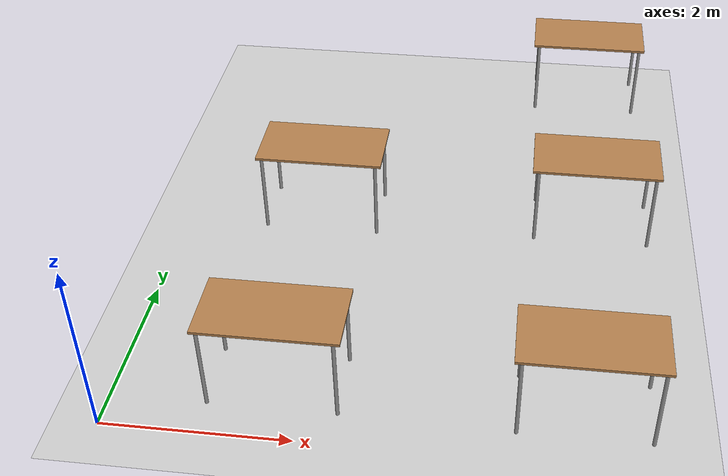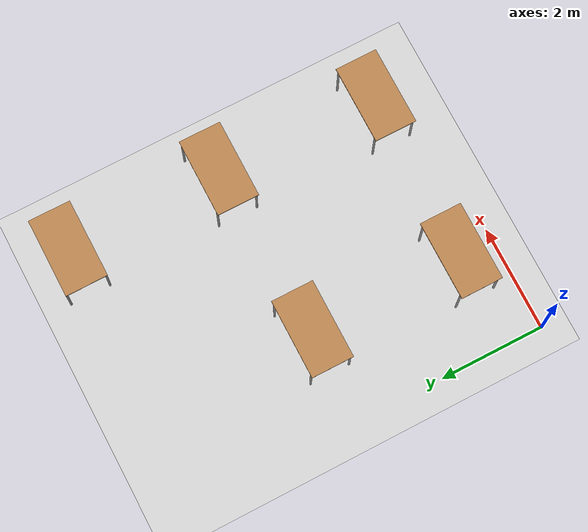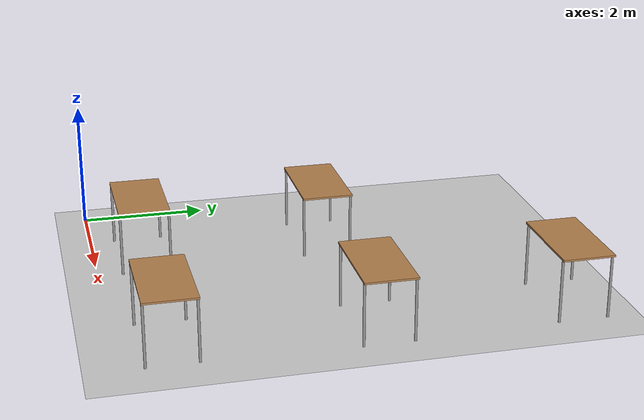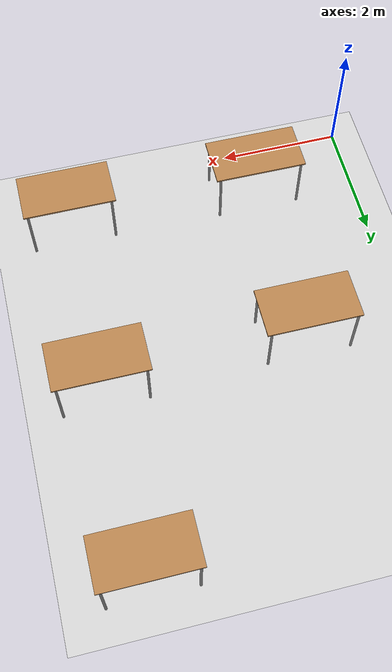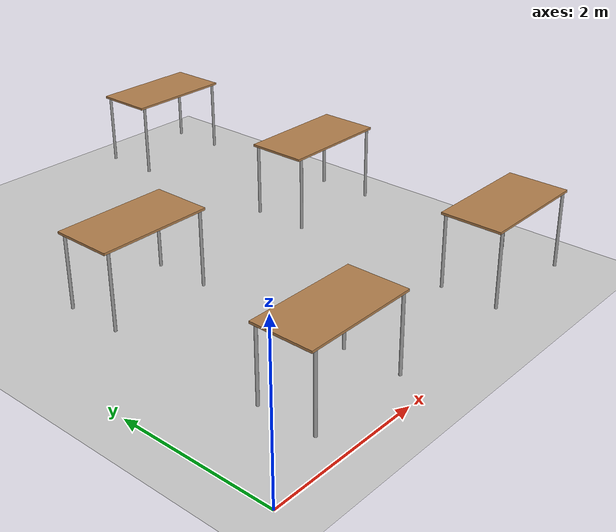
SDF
<sdf version="1.6">
 <world name="default">
  <light name="sun" type="directional">
   <pose>0 0 10 0 -0 0</pose>
   <diffuse>0.8 0.8 0.8 1</diffuse>
   <specular>0.2 0.2 0.2 1</specular>
   <attenuation>
    <range>1000</range>
    <constant>0.9</constant>
    <linear>0.01</linear>
    <quadratic>0.001</quadratic>
   </attenuation>
   <direction>-0.5 0.1 -0.9</direction>
  </light>
  <model name="ground_plane">
   <static>1</static>
   <link name="link">
    <collision name="collision">
     <geometry><plane><normal>0 0 1</normal><size>100 100</size></plane></geometry>
     <surface>
      <contact><collide_bitmask>65535</collide_bitmask></contact>
      <friction><ode><mu>100</mu><mu2>50</mu2></ode></friction>
     </surface>
    </collision>
    <visual name="visual">
     <cast_shadows>0</cast_shadows>
     <geometry><plane><normal>0 0 1</normal><size>100 100</size></plane></geometry>
     <material>
      <script><uri>file://media/materials/scripts/gazebo.material</uri><name>Gazebo/Grey</name></script>
     </material>
    </visual>
   </link>
  </model>
  <gravity>0 0 -9.8</gravity>
  <magnetic_field>6e-06 2.3e-05 -4.2e-05</magnetic_field>
  <atmosphere type="adiabatic"/>
  <physics name="default_physics" default="0" type="ode">
   <max_step_size>0.001</max_step_size>
   <real_time_factor>1</real_time_factor>
   <real_time_update_rate>1000</real_time_update_rate>
  </physics>
  <scene><ambient>0.4 0.4 0.4 1</ambient><background>0.7 0.7 0.7 1</background><shadows>1</shadows></scene>
  <spherical_coordinates>
   <surface_model>EARTH_WGS84</surface_model>
   <latitude_deg>0</latitude_deg>
   <longitude_deg>0</longitude_deg>
   <elevation>0</elevation>
   <heading_deg>0</heading_deg>
  </spherical_coordinates>
  <model name="table">
   <static>1</static>
   <link name="link">
    <collision name="surface">
     <pose>0 0 1 0 -0 0</pose>
     <geometry><box><size>1.5 0.8 0.03</size></box></geometry>
     <surface><friction><ode><mu>0.6</mu><mu2>0.6</mu2></ode></friction></surface>
    </collision>
    <visual name="visual1">
     <pose>0 0 1 0 -0 0</pose>
     <geometry><box><size>1.5 0.8 0.03</size></box></geometry>
     <material>
      <script><uri>file://media/materials/scripts/gazebo.material</uri><name>Gazebo/Wood</name></script>
     </material>
    </visual>
    <collision name="front_left_leg">
     <pose>0.68 0.38 0.5 0 -0 0</pose>
     <geometry><cylinder><radius>0.02</radius><length>1</length></cylinder></geometry>
    </collision>
    <visual name="front_left_leg">
     <pose>0.68 0.38 0.5 0 -0 0</pose>
     <geometry><cylinder><radius>0.02</radius><length>1</length></cylinder></geometry>
     <material>
      <script><uri>file://media/materials/scripts/gazebo.material</uri><name>Gazebo/Grey</name></script>
     </material>
    </visual>
    <collision name="front_right_leg">
     <pose>0.68 -0.38 0.5 0 -0 0</pose>
     <geometry><cylinder><radius>0.02</radius><length>1</length></cylinder></geometry>
    </collision>
    <visual name="front_right_leg">
     <pose>0.68 -0.38 0.5 0 -0 0</pose>
     <geometry><cylinder><radius>0.02</radius><length>1</length></cylinder></geometry>
     <material>
      <script><uri>file://media/materials/scripts/gazebo.material</uri><name>Gazebo/Grey</name></script>
     </material>
    </visual>
    <collision name="back_right_leg">
     <pose>-0.68 -0.38 0.5 0 -0 0</pose>
     <geometry><cylinder><radius>0.02</radius><length>1</length></cylinder></geometry>
    </collision>
    <visual name="back_right_leg">
     <pose>-0.68 -0.38 0.5 0 -0 0</pose>
     <geometry><cylinder><radius>0.02</radius><length>1</length></cylinder></geometry>
     <material>
      <script><uri>file://media/materials/scripts/gazebo.material</uri><name>Gazebo/Grey</name></script>
     </material>
    </visual>
    <collision name="back_left_leg">
     <pose>-0.68 0.38 0.5 0 -0 0</pose>
     <geometry><cylinder><radius>0.02</radius><length>1</length></cylinder></geometry>
    </collision>
    <visual name="back_left_leg">
     <pose>-0.68 0.38 0.5 0 -0 0</pose>
     <geometry><cylinder><radius>0.02</radius><length>1</length></cylinder></geometry>
     <material>
      <script><uri>file://media/materials/scripts/gazebo.material</uri><name>Gazebo/Grey</name></script>
     </material>
    </visual>
   </link>
   <pose>4.88351 6.77951 0 0 -0 0</pose>
  </model>
  <model name="table_0">
   <static>1</static>
   <link name="link">
    <collision name="surface">
     <pose>0 0 1 0 -0 0</pose>
     <geometry><box><size>1.5 0.8 0.03</size></box></geometry>
     <surface><friction><ode><mu>0.6</mu><mu2>0.6</mu2></ode></friction></surface>
    </collision>
    <visual name="visual1">
     <pose>0 0 1 0 -0 0</pose>
     <geometry><box><size>1.5 0.8 0.03</size></box></geometry>
     <material>
      <script><uri>file://media/materials/scripts/gazebo.material</uri><name>Gazebo/Wood</name></script>
     </material>
    </visual>
    <collision name="front_left_leg">
     <pose>0.68 0.38 0.5 0 -0 0</pose>
     <geometry><cylinder><radius>0.02</radius><length>1</length></cylinder></geometry>
    </collision>
    <visual name="front_left_leg">
     <pose>0.68 0.38 0.5 0 -0 0</pose>
     <geometry><cylinder><radius>0.02</radius><length>1</length></cylinder></geometry>
     <material>
      <script><uri>file://media/materials/scripts/gazebo.material</uri><name>Gazebo/Grey</name></script>
     </material>
    </visual>
    <collision name="front_right_leg">
     <pose>0.68 -0.38 0.5 0 -0 0</pose>
     <geometry><cylinder><radius>0.02</radius><length>1</length></cylinder></geometry>
    </collision>
    <visual name="front_right_leg">
     <pose>0.68 -0.38 0.5 0 -0 0</pose>
     <geometry><cylinder><radius>0.02</radius><length>1</length></cylinder></geometry>
     <material>
      <script><uri>file://media/materials/scripts/gazebo.material</uri><name>Gazebo/Grey</name></script>
     </material>
    </visual>
    <collision name="back_right_leg">
     <pose>-0.68 -0.38 0.5 0 -0 0</pose>
     <geometry><cylinder><radius>0.02</radius><length>1</length></cylinder></geometry>
    </collision>
    <visual name="back_right_leg">
     <pose>-0.68 -0.38 0.5 0 -0 0</pose>
     <geometry><cylinder><radius>0.02</radius><length>1</length></cylinder></geometry>
     <material>
      <script><uri>file://media/materials/scripts/gazebo.material</uri><name>Gazebo/Grey</name></script>
     </material>
    </visual>
    <collision name="back_left_leg">
     <pose>-0.68 0.38 0.5 0 -0 0</pose>
     <geometry><cylinder><radius>0.02</radius><length>1</length></cylinder></geometry>
    </collision>
    <visual name="back_left_leg">
     <pose>-0.68 0.38 0.5 0 -0 0</pose>
     <geometry><cylinder><radius>0.02</radius><length>1</length></cylinder></geometry>
     <material>
      <script><uri>file://media/materials/scripts/gazebo.material</uri><name>Gazebo/Grey</name></script>
     </material>
    </visual>
   </link>
   <pose>4.95349 3.81373 0 0 -0 0</pose>
  </model>
  <model name="table_1">
   <static>1</static>
   <link name="link">
    <collision name="surface">
     <pose>0 0 1 0 -0 0</pose>
     <geometry><box><size>1.5 0.8 0.03</size></box></geometry>
     <surface><friction><ode><mu>0.6</mu><mu2>0.6</mu2></ode></friction></surface>
    </collision>
    <visual name="visual1">
     <pose>0 0 1 0 -0 0</pose>
     <geometry><box><size>1.5 0.8 0.03</size></box></geometry>
     <material>
      <script><uri>file://media/materials/scripts/gazebo.material</uri><name>Gazebo/Wood</name></script>
     </material>
    </visual>
    <collision name="front_left_leg">
     <pose>0.68 0.38 0.5 0 -0 0</pose>
     <geometry><cylinder><radius>0.02</radius><length>1</length></cylinder></geometry>
    </collision>
    <visual name="front_left_leg">
     <pose>0.68 0.38 0.5 0 -0 0</pose>
     <geometry><cylinder><radius>0.02</radius><length>1</length></cylinder></geometry>
     <material>
      <script><uri>file://media/materials/scripts/gazebo.material</uri><name>Gazebo/Grey</name></script>
     </material>
    </visual>
    <collision name="front_right_leg">
     <pose>0.68 -0.38 0.5 0 -0 0</pose>
     <geometry><cylinder><radius>0.02</radius><length>1</length></cylinder></geometry>
    </collision>
    <visual name="front_right_leg">
     <pose>0.68 -0.38 0.5 0 -0 0</pose>
     <geometry><cylinder><radius>0.02</radius><length>1</length></cylinder></geometry>
     <material>
      <script><uri>file://media/materials/scripts/gazebo.material</uri><name>Gazebo/Grey</name></script>
     </material>
    </visual>
    <collision name="back_right_leg">
     <pose>-0.68 -0.38 0.5 0 -0 0</pose>
     <geometry><cylinder><radius>0.02</radius><length>1</length></cylinder></geometry>
    </collision>
    <visual name="back_right_leg">
     <pose>-0.68 -0.38 0.5 0 -0 0</pose>
     <geometry><cylinder><radius>0.02</radius><length>1</length></cylinder></geometry>
     <material>
      <script><uri>file://media/materials/scripts/gazebo.material</uri><name>Gazebo/Grey</name></script>
     </material>
    </visual>
    <collision name="back_left_leg">
     <pose>-0.68 0.38 0.5 0 -0 0</pose>
     <geometry><cylinder><radius>0.02</radius><length>1</length></cylinder></geometry>
    </collision>
    <visual name="back_left_leg">
     <pose>-0.68 0.38 0.5 0 -0 0</pose>
     <geometry><cylinder><radius>0.02</radius><length>1</length></cylinder></geometry>
     <material>
      <script><uri>file://media/materials/scripts/gazebo.material</uri><name>Gazebo/Grey</name></script>
     </material>
    </visual>
   </link>
   <pose>4.87106 0.745924 0 0 -0 0</pose>
  </model>
  <model name="table_2">
   <static>1</static>
   <link name="link">
    <collision name="surface">
     <pose>0 0 1 0 -0 0</pose>
     <geometry><box><size>1.5 0.8 0.03</size></box></geometry>
     <surface><friction><ode><mu>0.6</mu><mu2>0.6</mu2></ode></friction></surface>
    </collision>
    <visual name="visual1">
     <pose>0 0 1 0 -0 0</pose>
     <geometry><box><size>1.5 0.8 0.03</size></box></geometry>
     <material>
      <script><uri>file://media/materials/scripts/gazebo.material</uri><name>Gazebo/Wood</name></script>
     </material>
    </visual>
    <collision name="front_left_leg">
     <pose>0.68 0.38 0.5 0 -0 0</pose>
     <geometry><cylinder><radius>0.02</radius><length>1</length></cylinder></geometry>
    </collision>
    <visual name="front_left_leg">
     <pose>0.68 0.38 0.5 0 -0 0</pose>
     <geometry><cylinder><radius>0.02</radius><length>1</length></cylinder></geometry>
     <material>
      <script><uri>file://media/materials/scripts/gazebo.material</uri><name>Gazebo/Grey</name></script>
     </material>
    </visual>
    <collision name="front_right_leg">
     <pose>0.68 -0.38 0.5 0 -0 0</pose>
     <geometry><cylinder><radius>0.02</radius><length>1</length></cylinder></geometry>
    </collision>
    <visual name="front_right_leg">
     <pose>0.68 -0.38 0.5 0 -0 0</pose>
     <geometry><cylinder><radius>0.02</radius><length>1</length></cylinder></geometry>
     <material>
      <script><uri>file://media/materials/scripts/gazebo.material</uri><name>Gazebo/Grey</name></script>
     </material>
    </visual>
    <collision name="back_right_leg">
     <pose>-0.68 -0.38 0.5 0 -0 0</pose>
     <geometry><cylinder><radius>0.02</radius><length>1</length></cylinder></geometry>
    </collision>
    <visual name="back_right_leg">
     <pose>-0.68 -0.38 0.5 0 -0 0</pose>
     <geometry><cylinder><radius>0.02</radius><length>1</length></cylinder></geometry>
     <material>
      <script><uri>file://media/materials/scripts/gazebo.material</uri><name>Gazebo/Grey</name></script>
     </material>
    </visual>
    <collision name="back_left_leg">
     <pose>-0.68 0.38 0.5 0 -0 0</pose>
     <geometry><cylinder><radius>0.02</radius><length>1</length></cylinder></geometry>
    </collision>
    <visual name="back_left_leg">
     <pose>-0.68 0.38 0.5 0 -0 0</pose>
     <geometry><cylinder><radius>0.02</radius><length>1</length></cylinder></geometry>
     <material>
      <script><uri>file://media/materials/scripts/gazebo.material</uri><name>Gazebo/Grey</name></script>
     </material>
    </visual>
   </link>
   <pose>1.67226 3.69542 0 0 -0 0</pose>
  </model>
  <model name="table_3">
   <static>1</static>
   <link name="link">
    <collision name="surface">
     <pose>0 0 1 0 -0 0</pose>
     <geometry><box><size>1.5 0.8 0.03</size></box></geometry>
     <surface><friction><ode><mu>0.6</mu><mu2>0.6</mu2></ode></friction></surface>
    </collision>
    <visual name="visual1">
     <pose>0 0 1 0 -0 0</pose>
     <geometry><box><size>1.5 0.8 0.03</size></box></geometry>
     <material>
      <script><uri>file://media/materials/scripts/gazebo.material</uri><name>Gazebo/Wood</name></script>
     </material>
    </visual>
    <collision name="front_left_leg">
     <pose>0.68 0.38 0.5 0 -0 0</pose>
     <geometry><cylinder><radius>0.02</radius><length>1</length></cylinder></geometry>
    </collision>
    <visual name="front_left_leg">
     <pose>0.68 0.38 0.5 0 -0 0</pose>
     <geometry><cylinder><radius>0.02</radius><length>1</length></cylinder></geometry>
     <material>
      <script><uri>file://media/materials/scripts/gazebo.material</uri><name>Gazebo/Grey</name></script>
     </material>
    </visual>
    <collision name="front_right_leg">
     <pose>0.68 -0.38 0.5 0 -0 0</pose>
     <geometry><cylinder><radius>0.02</radius><length>1</length></cylinder></geometry>
    </collision>
    <visual name="front_right_leg">
     <pose>0.68 -0.38 0.5 0 -0 0</pose>
     <geometry><cylinder><radius>0.02</radius><length>1</length></cylinder></geometry>
     <material>
      <script><uri>file://media/materials/scripts/gazebo.material</uri><name>Gazebo/Grey</name></script>
     </material>
    </visual>
    <collision name="back_right_leg">
     <pose>-0.68 -0.38 0.5 0 -0 0</pose>
     <geometry><cylinder><radius>0.02</radius><length>1</length></cylinder></geometry>
    </collision>
    <visual name="back_right_leg">
     <pose>-0.68 -0.38 0.5 0 -0 0</pose>
     <geometry><cylinder><radius>0.02</radius><length>1</length></cylinder></geometry>
     <material>
      <script><uri>file://media/materials/scripts/gazebo.material</uri><name>Gazebo/Grey</name></script>
     </material>
    </visual>
    <collision name="back_left_leg">
     <pose>-0.68 0.38 0.5 0 -0 0</pose>
     <geometry><cylinder><radius>0.02</radius><length>1</length></cylinder></geometry>
    </collision>
    <visual name="back_left_leg">
     <pose>-0.68 0.38 0.5 0 -0 0</pose>
     <geometry><cylinder><radius>0.02</radius><length>1</length></cylinder></geometry>
     <material>
      <script><uri>file://media/materials/scripts/gazebo.material</uri><name>Gazebo/Grey</name></script>
     </material>
    </visual>
   </link>
   <pose>1.69954 0.776775 0 0 -0 0</pose>
  </model>
 </world>
</sdf>
